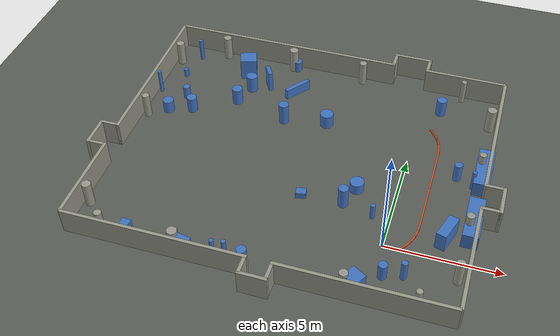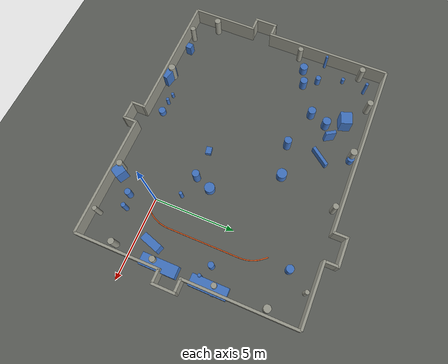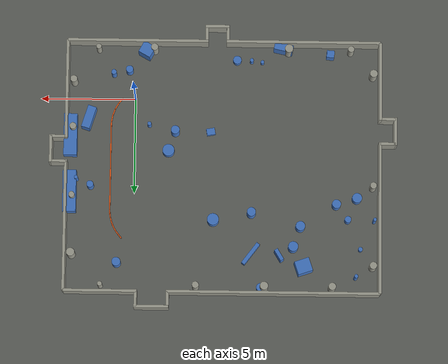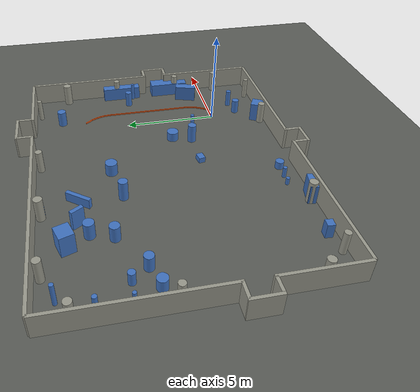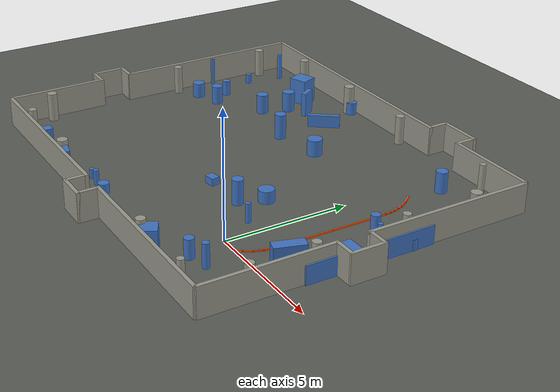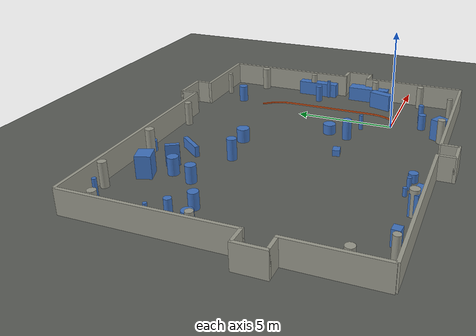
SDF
<sdf version="1.9">
 <world name="default">
  <model name="track_curb">
   <static>true</static>
   <link name="curb_link">
    <collision name="right0_0_0_collision">
     <pose>0.795838 0.075965 0.035000 0.000000 0.000000 0.878218</pose>
     <geometry><box><size>0.386390 0.060000 0.070000</size></box></geometry>
    </collision>
    <visual name="right0_0_0_visual">
     <pose>0.795838 0.075965 0.035000 0.000000 0.000000 0.878218</pose>
     <geometry><box><size>0.386390 0.060000 0.070000</size></box></geometry>
     <material><ambient>0.9 0.35 0.1 1</ambient><diffuse>0.9 0.35 0.1 1</diffuse></material>
    </visual>
    <collision name="right0_1_0_collision">
     <pose>0.989773 0.355284 0.035000 0.000000 0.000000 1.042438</pose>
     <geometry><box><size>0.415992 0.060000 0.070000</size></box></geometry>
    </collision>
    <visual name="right0_1_0_visual">
     <pose>0.989773 0.355284 0.035000 0.000000 0.000000 1.042438</pose>
     <geometry><box><size>0.415992 0.060000 0.070000</size></box></geometry>
     <material><ambient>0.9 0.35 0.1 1</ambient><diffuse>0.9 0.35 0.1 1</diffuse></material>
    </visual>
    <collision name="right0_2_0_collision">
     <pose>1.141707 0.675781 0.035000 0.000000 0.000000 1.213797</pose>
     <geometry><box><size>0.415992 0.060000 0.070000</size></box></geometry>
    </collision>
    <visual name="right0_2_0_visual">
     <pose>1.141707 0.675781 0.035000 0.000000 0.000000 1.213797</pose>
     <geometry><box><size>0.415992 0.060000 0.070000</size></box></geometry>
     <material><ambient>0.9 0.35 0.1 1</ambient><diffuse>0.9 0.35 0.1 1</diffuse></material>
    </visual>
    <collision name="right0_3_0_collision">
     <pose>1.236763 1.017492 0.035000 0.000000 0.000000 1.385157</pose>
     <geometry><box><size>0.415992 0.060000 0.070000</size></box></geometry>
    </collision>
    <visual name="right0_3_0_visual">
     <pose>1.236763 1.017492 0.035000 0.000000 0.000000 1.385157</pose>
     <geometry><box><size>0.415992 0.060000 0.070000</size></box></geometry>
     <material><ambient>0.9 0.35 0.1 1</ambient><diffuse>0.9 0.35 0.1 1</diffuse></material>
    </visual>
    <collision name="right0_4_0_collision">
     <pose>1.274806 1.294999 0.035000 0.000000 0.000000 1.520246</pose>
     <geometry><box><size>0.265400 0.060000 0.070000</size></box></geometry>
    </collision>
    <visual name="right0_4_0_visual">
     <pose>1.274806 1.294999 0.035000 0.000000 0.000000 1.520246</pose>
     <geometry><box><size>0.265400 0.060000 0.070000</size></box></geometry>
     <material><ambient>0.9 0.35 0.1 1</ambient><diffuse>0.9 0.35 0.1 1</diffuse></material>
    </visual>
    <collision name="right0_5_0_collision">
     <pose>1.279996 2.523784 0.035000 0.000000 0.000000 1.570796</pose>
     <geometry><box><size>2.312432 0.060000 0.070000</size></box></geometry>
    </collision>
    <visual name="right0_5_0_visual">
     <pose>1.279996 2.523784 0.035000 0.000000 0.000000 1.570796</pose>
     <geometry><box><size>2.312432 0.060000 0.070000</size></box></geometry>
     <material><ambient>0.9 0.35 0.1 1</ambient><diffuse>0.9 0.35 0.1 1</diffuse></material>
    </visual>
    <collision name="right0_5_1_collision">
     <pose>1.279996 4.776216 0.035000 0.000000 0.000000 1.570796</pose>
     <geometry><box><size>2.312432 0.060000 0.070000</size></box></geometry>
    </collision>
    <visual name="right0_5_1_visual">
     <pose>1.279996 4.776216 0.035000 0.000000 0.000000 1.570796</pose>
     <geometry><box><size>2.312432 0.060000 0.070000</size></box></geometry>
     <material><ambient>0.9 0.35 0.1 1</ambient><diffuse>0.9 0.35 0.1 1</diffuse></material>
    </visual>
    <collision name="right0_6_0_collision">
     <pose>1.274806 6.005001 0.035000 0.000000 0.000000 1.621347</pose>
     <geometry><box><size>0.265400 0.060000 0.070000</size></box></geometry>
    </collision>
    <visual name="right0_6_0_visual">
     <pose>1.274806 6.005001 0.035000 0.000000 0.000000 1.621347</pose>
     <geometry><box><size>0.265400 0.060000 0.070000</size></box></geometry>
     <material><ambient>0.9 0.35 0.1 1</ambient><diffuse>0.9 0.35 0.1 1</diffuse></material>
    </visual>
    <collision name="right0_7_0_collision">
     <pose>1.254094 6.210319 0.035000 0.000000 0.000000 1.720736</pose>
     <geometry><box><size>0.267830 0.060000 0.070000</size></box></geometry>
    </collision>
    <visual name="right0_7_0_visual">
     <pose>1.254094 6.210319 0.035000 0.000000 0.000000 1.720736</pose>
     <geometry><box><size>0.267830 0.060000 0.070000</size></box></geometry>
     <material><ambient>0.9 0.35 0.1 1</ambient><diffuse>0.9 0.35 0.1 1</diffuse></material>
    </visual>
    <collision name="right0_8_0_collision">
     <pose>1.212873 6.413755 0.035000 0.000000 0.000000 1.820696</pose>
     <geometry><box><size>0.267830 0.060000 0.070000</size></box></geometry>
    </collision>
    <visual name="right0_8_0_visual">
     <pose>1.212873 6.413755 0.035000 0.000000 0.000000 1.820696</pose>
     <geometry><box><size>0.267830 0.060000 0.070000</size></box></geometry>
     <material><ambient>0.9 0.35 0.1 1</ambient><diffuse>0.9 0.35 0.1 1</diffuse></material>
    </visual>
    <collision name="right0_9_0_collision">
     <pose>1.151556 6.612062 0.035000 0.000000 0.000000 1.920656</pose>
     <geometry><box><size>0.267830 0.060000 0.070000</size></box></geometry>
    </collision>
    <visual name="right0_9_0_visual">
     <pose>1.151556 6.612062 0.035000 0.000000 0.000000 1.920656</pose>
     <geometry><box><size>0.267830 0.060000 0.070000</size></box></geometry>
     <material><ambient>0.9 0.35 0.1 1</ambient><diffuse>0.9 0.35 0.1 1</diffuse></material>
    </visual>
    <collision name="right0_10_0_collision">
     <pose>1.070755 6.803260 0.035000 0.000000 0.000000 2.020615</pose>
     <geometry><box><size>0.267830 0.060000 0.070000</size></box></geometry>
    </collision>
    <visual name="right0_10_0_visual">
     <pose>1.070755 6.803260 0.035000 0.000000 0.000000 2.020615</pose>
     <geometry><box><size>0.267830 0.060000 0.070000</size></box></geometry>
     <material><ambient>0.9 0.35 0.1 1</ambient><diffuse>0.9 0.35 0.1 1</diffuse></material>
    </visual>
    <collision name="right0_11_0_collision">
     <pose>0.979572 6.973121 0.035000 0.000000 0.000000 2.113435</pose>
     <geometry><box><size>0.238159 0.060000 0.070000</size></box></geometry>
    </collision>
    <visual name="right0_11_0_visual">
     <pose>0.979572 6.973121 0.035000 0.000000 0.000000 2.113435</pose>
     <geometry><box><size>0.238159 0.060000 0.070000</size></box></geometry>
     <material><ambient>0.9 0.35 0.1 1</ambient><diffuse>0.9 0.35 0.1 1</diffuse></material>
    </visual>
    <collision name="right0_12_0_collision">
     <pose>0.795085 7.224105 0.035000 0.000000 0.000000 2.241073</pose>
     <geometry><box><size>0.505864 0.060000 0.070000</size></box></geometry>
    </collision>
    <visual name="right0_12_0_visual">
     <pose>0.795085 7.224105 0.035000 0.000000 0.000000 2.241073</pose>
     <geometry><box><size>0.505864 0.060000 0.070000</size></box></geometry>
     <material><ambient>0.9 0.35 0.1 1</ambient><diffuse>0.9 0.35 0.1 1</diffuse></material>
    </visual>
   </link>
  </model>
  <model name="track_feature">
   <static>true</static>
   <link name="feature_link">
    <collision name="feat_box_2_collision">
     <pose>-0.581415 -2.556854 0.527100 0.000000 0.000000 -2.079561</pose>
     <geometry><box><size>0.652562 0.680930 1.054201</size></box></geometry>
    </collision>
    <visual name="feat_box_2_visual">
     <pose>-0.581415 -2.556854 0.527100 0.000000 0.000000 -2.079561</pose>
     <geometry><box><size>0.652562 0.680930 1.054201</size></box></geometry>
     <material><ambient>0.25 0.45 0.75 1</ambient><diffuse>0.25 0.45 0.75 1</diffuse></material>
    </visual>
    <collision name="feat_box_3_collision">
     <pose>-6.160426 8.190236 0.258453 0.000000 0.000000 0.923314</pose>
     <geometry><box><size>1.338769 0.205793 0.516906</size></box></geometry>
    </collision>
    <visual name="feat_box_3_visual">
     <pose>-6.160426 8.190236 0.258453 0.000000 0.000000 0.923314</pose>
     <geometry><box><size>1.338769 0.205793 0.516906</size></box></geometry>
     <material><ambient>0.25 0.45 0.75 1</ambient><diffuse>0.25 0.45 0.75 1</diffuse></material>
    </visual>
    <collision name="feat_box_6_collision">
     <pose>-8.921870 8.882231 0.544162 0.000000 0.000000 0.329599</pose>
     <geometry><box><size>0.791127 0.712381 1.088324</size></box></geometry>
    </collision>
    <visual name="feat_box_6_visual">
     <pose>-8.921870 8.882231 0.544162 0.000000 0.000000 0.329599</pose>
     <geometry><box><size>0.791127 0.712381 1.088324</size></box></geometry>
     <material><ambient>0.25 0.45 0.75 1</ambient><diffuse>0.25 0.45 0.75 1</diffuse></material>
    </visual>
    <collision name="feat_box_9_collision">
     <pose>-7.639466 8.291622 0.512000 0.000000 0.000000 -1.023772</pose>
     <geometry><box><size>0.650131 0.202313 1.024000</size></box></geometry>
    </collision>
    <visual name="feat_box_9_visual">
     <pose>-7.639466 8.291622 0.512000 0.000000 0.000000 -1.023772</pose>
     <geometry><box><size>0.650131 0.202313 1.024000</size></box></geometry>
     <material><ambient>0.25 0.45 0.75 1</ambient><diffuse>0.25 0.45 0.75 1</diffuse></material>
    </visual>
    <collision name="feat_box_17_collision">
     <pose>2.437986 1.081042 0.435741 0.000000 0.000000 -1.877875</pose>
     <geometry><box><size>1.191977 0.456318 0.871483</size></box></geometry>
    </collision>
    <visual name="feat_box_17_visual">
     <pose>2.437986 1.081042 0.435741 0.000000 0.000000 -1.877875</pose>
     <geometry><box><size>1.191977 0.456318 0.871483</size></box></geometry>
     <material><ambient>0.25 0.45 0.75 1</ambient><diffuse>0.25 0.45 0.75 1</diffuse></material>
    </visual>
    <collision name="feat_box_22_collision">
     <pose>-7.800102 -2.750025 0.512488 0.000000 0.000000 -0.214717</pose>
     <geometry><box><size>0.996011 0.394849 1.024977</size></box></geometry>
    </collision>
    <visual name="feat_box_22_visual">
     <pose>-7.800102 -2.750025 0.512488 0.000000 0.000000 -0.214717</pose>
     <geometry><box><size>0.996011 0.394849 1.024977</size></box></geometry>
     <material><ambient>0.25 0.45 0.75 1</ambient><diffuse>0.25 0.45 0.75 1</diffuse></material>
    </visual>
    <collision name="feat_box_30_collision">
     <pose>-10.289091 -2.465221 0.379258 0.000000 0.000000 1.489218</pose>
     <geometry><box><size>0.373003 0.396188 0.758515</size></box></geometry>
    </collision>
    <visual name="feat_box_30_visual">
     <pose>-10.289091 -2.465221 0.379258 0.000000 0.000000 1.489218</pose>
     <geometry><box><size>0.373003 0.396188 0.758515</size></box></geometry>
     <material><ambient>0.25 0.45 0.75 1</ambient><diffuse>0.25 0.45 0.75 1</diffuse></material>
    </visual>
    <collision name="landmark_0_collision">
     <pose>-4.000000 1.700000 0.150000 0.000000 0.000000 0.174533</pose>
     <geometry><box><size>0.450000 0.350000 0.300000</size></box></geometry>
    </collision>
    <visual name="landmark_0_visual">
     <pose>-4.000000 1.700000 0.150000 0.000000 0.000000 0.174533</pose>
     <geometry><box><size>0.450000 0.350000 0.300000</size></box></geometry>
     <material><ambient>0.25 0.45 0.75 1</ambient><diffuse>0.25 0.45 0.75 1</diffuse></material>
    </visual>
    <collision name="landmark_1_collision">
     <pose>3.400000 2.000000 0.375000 0.000000 0.000000 0.000000</pose>
     <geometry><box><size>0.700000 2.200000 0.750000</size></box></geometry>
    </collision>
    <visual name="landmark_1_visual">
     <pose>3.400000 2.000000 0.375000 0.000000 0.000000 0.000000</pose>
     <geometry><box><size>0.700000 2.200000 0.750000</size></box></geometry>
     <material><ambient>0.25 0.45 0.75 1</ambient><diffuse>0.25 0.45 0.75 1</diffuse></material>
    </visual>
    <collision name="landmark_2_collision">
     <pose>3.400000 5.000000 0.375000 0.000000 0.000000 0.000000</pose>
     <geometry><box><size>0.700000 2.200000 0.750000</size></box></geometry>
    </collision>
    <visual name="landmark_2_visual">
     <pose>3.400000 5.000000 0.375000 0.000000 0.000000 0.000000</pose>
     <geometry><box><size>0.700000 2.200000 0.750000</size></box></geometry>
     <material><ambient>0.25 0.45 0.75 1</ambient><diffuse>0.25 0.45 0.75 1</diffuse></material>
    </visual>
    <collision name="feat_cyl_1_collision">
     <pose>-1.774489 2.749740 0.251477 0.000000 0.000000 0.000000</pose>
     <geometry><cylinder><radius>0.314614</radius><length>0.502954</length></cylinder></geometry>
    </collision>
    <visual name="feat_cyl_1_visual">
     <pose>-1.774489 2.749740 0.251477 0.000000 0.000000 0.000000</pose>
     <geometry><cylinder><radius>0.314614</radius><length>0.502954</length></cylinder></geometry>
     <material><ambient>0.25 0.45 0.75 1</ambient><diffuse>0.25 0.45 0.75 1</diffuse></material>
    </visual>
    <collision name="feat_cyl_4_collision">
     <pose>-6.694799 -2.059456 0.194213 0.000000 0.000000 0.000000</pose>
     <geometry><cylinder><radius>0.096125</radius><length>0.388426</length></cylinder></geometry>
    </collision>
    <visual name="feat_cyl_4_visual">
     <pose>-6.694799 -2.059456 0.194213 0.000000 0.000000 0.000000</pose>
     <geometry><cylinder><radius>0.096125</radius><length>0.388426</length></cylinder></geometry>
     <material><ambient>0.25 0.45 0.75 1</ambient><diffuse>0.25 0.45 0.75 1</diffuse></material>
    </visual>
    <collision name="feat_cyl_5_collision">
     <pose>-11.248425 6.349912 0.329447 0.000000 0.000000 0.000000</pose>
     <geometry><cylinder><radius>0.171465</radius><length>0.658894</length></cylinder></geometry>
    </collision>
    <visual name="feat_cyl_5_visual">
     <pose>-11.248425 6.349912 0.329447 0.000000 0.000000 0.000000</pose>
     <geometry><cylinder><radius>0.171465</radius><length>0.658894</length></cylinder></geometry>
     <material><ambient>0.25 0.45 0.75 1</ambient><diffuse>0.25 0.45 0.75 1</diffuse></material>
    </visual>
    <collision name="feat_cyl_7_collision">
     <pose>-2.129406 1.742207 0.508666 0.000000 0.000000 0.000000</pose>
     <geometry><cylinder><radius>0.223696</radius><length>1.017332</length></cylinder></geometry>
    </collision>
    <visual name="feat_cyl_7_visual">
     <pose>-2.129406 1.742207 0.508666 0.000000 0.000000 0.000000</pose>
     <geometry><cylinder><radius>0.223696</radius><length>1.017332</length></cylinder></geometry>
     <material><ambient>0.25 0.45 0.75 1</ambient><diffuse>0.25 0.45 0.75 1</diffuse></material>
    </visual>
    <collision name="feat_cyl_8_collision">
     <pose>-11.724675 5.199260 0.315476 0.000000 0.000000 0.000000</pose>
     <geometry><cylinder><radius>0.257579</radius><length>0.630951</length></cylinder></geometry>
    </collision>
    <visual name="feat_cyl_8_visual">
     <pose>-11.724675 5.199260 0.315476 0.000000 0.000000 0.000000</pose>
     <geometry><cylinder><radius>0.257579</radius><length>0.630951</length></cylinder></geometry>
     <material><ambient>0.25 0.45 0.75 1</ambient><diffuse>0.25 0.45 0.75 1</diffuse></material>
    </visual>
    <collision name="feat_cyl_10_collision">
     <pose>-8.383253 7.828350 0.425368 0.000000 0.000000 0.000000</pose>
     <geometry><cylinder><radius>0.262843</radius><length>0.850736</length></cylinder></geometry>
    </collision>
    <visual name="feat_cyl_10_visual">
     <pose>-8.383253 7.828350 0.425368 0.000000 0.000000 0.000000</pose>
     <geometry><cylinder><radius>0.262843</radius><length>0.850736</length></cylinder></geometry>
     <material><ambient>0.25 0.45 0.75 1</ambient><diffuse>0.25 0.45 0.75 1</diffuse></material>
    </visual>
    <collision name="feat_cyl_11_collision">
     <pose>-6.684945 9.968727 0.267723 0.000000 0.000000 0.000000</pose>
     <geometry><cylinder><radius>0.219137</radius><length>0.535447</length></cylinder></geometry>
    </collision>
    <visual name="feat_cyl_11_visual">
     <pose>-6.684945 9.968727 0.267723 0.000000 0.000000 0.000000</pose>
     <geometry><cylinder><radius>0.219137</radius><length>0.535447</length></cylinder></geometry>
     <material><ambient>0.25 0.45 0.75 1</ambient><diffuse>0.25 0.45 0.75 1</diffuse></material>
    </visual>
    <collision name="feat_cyl_12_collision">
     <pose>-11.666292 9.393082 0.574413 0.000000 0.000000 0.000000</pose>
     <geometry><cylinder><radius>0.099789</radius><length>1.148826</length></cylinder></geometry>
    </collision>
    <visual name="feat_cyl_12_visual">
     <pose>-11.666292 9.393082 0.574413 0.000000 0.000000 0.000000</pose>
     <geometry><cylinder><radius>0.099789</radius><length>1.148826</length></cylinder></geometry>
     <material><ambient>0.25 0.45 0.75 1</ambient><diffuse>0.25 0.45 0.75 1</diffuse></material>
    </visual>
    <collision name="feat_cyl_13_collision">
     <pose>3.052305 4.317826 0.491781 0.000000 0.000000 0.000000</pose>
     <geometry><cylinder><radius>0.095647</radius><length>0.983562</length></cylinder></geometry>
    </collision>
    <visual name="feat_cyl_13_visual">
     <pose>3.052305 4.317826 0.491781 0.000000 0.000000 0.000000</pose>
     <geometry><cylinder><radius>0.095647</radius><length>0.983562</length></cylinder></geometry>
     <material><ambient>0.25 0.45 0.75 1</ambient><diffuse>0.25 0.45 0.75 1</diffuse></material>
    </visual>
    <collision name="feat_cyl_14_collision">
     <pose>0.869227 8.741721 0.430245 0.000000 0.000000 0.000000</pose>
     <geometry><cylinder><radius>0.230710</radius><length>0.860490</length></cylinder></geometry>
    </collision>
    <visual name="feat_cyl_14_visual">
     <pose>0.869227 8.741721 0.430245 0.000000 0.000000 0.000000</pose>
     <geometry><cylinder><radius>0.230710</radius><length>0.860490</length></cylinder></geometry>
     <material><ambient>0.25 0.45 0.75 1</ambient><diffuse>0.25 0.45 0.75 1</diffuse></material>
    </visual>
    <collision name="feat_cyl_15_collision">
     <pose>-5.357916 -2.153753 0.207390 0.000000 0.000000 0.000000</pose>
     <geometry><cylinder><radius>0.218447</radius><length>0.414781</length></cylinder></geometry>
    </collision>
    <visual name="feat_cyl_15_visual">
     <pose>-5.357916 -2.153753 0.207390 0.000000 0.000000 0.000000</pose>
     <geometry><cylinder><radius>0.218447</radius><length>0.414781</length></cylinder></geometry>
     <material><ambient>0.25 0.45 0.75 1</ambient><diffuse>0.25 0.45 0.75 1</diffuse></material>
    </visual>
    <collision name="feat_cyl_16_collision">
     <pose>-4.165591 6.422975 0.336970 0.000000 0.000000 0.000000</pose>
     <geometry><cylinder><radius>0.309782</radius><length>0.673940</length></cylinder></geometry>
    </collision>
    <visual name="feat_cyl_16_visual">
     <pose>-4.165591 6.422975 0.336970 0.000000 0.000000 0.000000</pose>
     <geometry><cylinder><radius>0.309782</radius><length>0.673940</length></cylinder></geometry>
     <material><ambient>0.25 0.45 0.75 1</ambient><diffuse>0.25 0.45 0.75 1</diffuse></material>
    </visual>
    <collision name="feat_cyl_18_collision">
     <pose>1.152145 -1.325701 0.479255 0.000000 0.000000 0.000000</pose>
     <geometry><cylinder><radius>0.135182</radius><length>0.958511</length></cylinder></geometry>
    </collision>
    <visual name="feat_cyl_18_visual">
     <pose>1.152145 -1.325701 0.479255 0.000000 0.000000 0.000000</pose>
     <geometry><cylinder><radius>0.135182</radius><length>0.958511</length></cylinder></geometry>
     <material><ambient>0.25 0.45 0.75 1</ambient><diffuse>0.25 0.45 0.75 1</diffuse></material>
    </visual>
    <collision name="feat_cyl_19_collision">
     <pose>3.578357 5.291748 0.212490 0.000000 0.000000 0.000000</pose>
     <geometry><cylinder><radius>0.204324</radius><length>0.424980</length></cylinder></geometry>
    </collision>
    <visual name="feat_cyl_19_visual">
     <pose>3.578357 5.291748 0.212490 0.000000 0.000000 0.000000</pose>
     <geometry><cylinder><radius>0.204324</radius><length>0.424980</length></cylinder></geometry>
     <material><ambient>0.25 0.45 0.75 1</ambient><diffuse>0.25 0.45 0.75 1</diffuse></material>
    </visual>
    <collision name="feat_cyl_20_collision">
     <pose>0.331226 -1.519883 0.392856 0.000000 0.000000 0.000000</pose>
     <geometry><cylinder><radius>0.191734</radius><length>0.785712</length></cylinder></geometry>
    </collision>
    <visual name="feat_cyl_20_visual">
     <pose>0.331226 -1.519883 0.392856 0.000000 0.000000 0.000000</pose>
     <geometry><cylinder><radius>0.191734</radius><length>0.785712</length></cylinder></geometry>
     <material><ambient>0.25 0.45 0.75 1</ambient><diffuse>0.25 0.45 0.75 1</diffuse></material>
    </visual>
    <collision name="feat_cyl_21_collision">
     <pose>-0.755450 1.382525 0.382097 0.000000 0.000000 0.000000</pose>
     <geometry><cylinder><radius>0.103910</radius><length>0.764194</length></cylinder></geometry>
    </collision>
    <visual name="feat_cyl_21_visual">
     <pose>-0.755450 1.382525 0.382097 0.000000 0.000000 0.000000</pose>
     <geometry><cylinder><radius>0.103910</radius><length>0.764194</length></cylinder></geometry>
     <material><ambient>0.25 0.45 0.75 1</ambient><diffuse>0.25 0.45 0.75 1</diffuse></material>
    </visual>
    <collision name="feat_cyl_23_collision">
     <pose>-8.753124 6.739991 0.413110 0.000000 0.000000 0.000000</pose>
     <geometry><cylinder><radius>0.248951</radius><length>0.826221</length></cylinder></geometry>
    </collision>
    <visual name="feat_cyl_23_visual">
     <pose>-8.753124 6.739991 0.413110 0.000000 0.000000 0.000000</pose>
     <geometry><cylinder><radius>0.248951</radius><length>0.826221</length></cylinder></geometry>
     <material><ambient>0.25 0.45 0.75 1</ambient><diffuse>0.25 0.45 0.75 1</diffuse></material>
    </visual>
    <collision name="feat_cyl_24_collision">
     <pose>-6.127524 -2.114447 0.298246 0.000000 0.000000 0.000000</pose>
     <geometry><cylinder><radius>0.102054</radius><length>0.596491</length></cylinder></geometry>
    </collision>
    <visual name="feat_cyl_24_visual">
     <pose>-6.127524 -2.114447 0.298246 0.000000 0.000000 0.000000</pose>
     <geometry><cylinder><radius>0.102054</radius><length>0.596491</length></cylinder></geometry>
     <material><ambient>0.25 0.45 0.75 1</ambient><diffuse>0.25 0.45 0.75 1</diffuse></material>
    </visual>
    <collision name="feat_cyl_25_collision">
     <pose>-6.173185 6.054653 0.525848 0.000000 0.000000 0.000000</pose>
     <geometry><cylinder><radius>0.232763</radius><length>1.051696</length></cylinder></geometry>
    </collision>
    <visual name="feat_cyl_25_visual">
     <pose>-6.173185 6.054653 0.525848 0.000000 0.000000 0.000000</pose>
     <geometry><cylinder><radius>0.232763</radius><length>1.051696</length></cylinder></geometry>
     <material><ambient>0.25 0.45 0.75 1</ambient><diffuse>0.25 0.45 0.75 1</diffuse></material>
    </visual>
    <collision name="feat_cyl_26_collision">
     <pose>-12.632936 6.407135 0.598371 0.000000 0.000000 0.000000</pose>
     <geometry><cylinder><radius>0.087629</radius><length>1.196742</length></cylinder></geometry>
    </collision>
    <visual name="feat_cyl_26_visual">
     <pose>-12.632936 6.407135 0.598371 0.000000 0.000000 0.000000</pose>
     <geometry><cylinder><radius>0.087629</radius><length>1.196742</length></cylinder></geometry>
     <material><ambient>0.25 0.45 0.75 1</ambient><diffuse>0.25 0.45 0.75 1</diffuse></material>
    </visual>
    <collision name="feat_cyl_27_collision">
     <pose>2.310290 4.667056 0.440040 0.000000 0.000000 0.000000</pose>
     <geometry><cylinder><radius>0.178377</radius><length>0.880081</length></cylinder></geometry>
    </collision>
    <visual name="feat_cyl_27_visual">
     <pose>2.310290 4.667056 0.440040 0.000000 0.000000 0.000000</pose>
     <geometry><cylinder><radius>0.178377</radius><length>0.880081</length></cylinder></geometry>
     <material><ambient>0.25 0.45 0.75 1</ambient><diffuse>0.25 0.45 0.75 1</diffuse></material>
    </visual>
    <collision name="feat_cyl_28_collision">
     <pose>-11.924055 7.880588 0.205456 0.000000 0.000000 0.000000</pose>
     <geometry><cylinder><radius>0.117067</radius><length>0.410912</length></cylinder></geometry>
    </collision>
    <visual name="feat_cyl_28_visual">
     <pose>-11.924055 7.880588 0.205456 0.000000 0.000000 0.000000</pose>
     <geometry><cylinder><radius>0.117067</radius><length>0.410912</length></cylinder></geometry>
     <material><ambient>0.25 0.45 0.75 1</ambient><diffuse>0.25 0.45 0.75 1</diffuse></material>
    </visual>
    <collision name="feat_cyl_29_collision">
     <pose>-10.640033 5.551522 0.393729 0.000000 0.000000 0.000000</pose>
     <geometry><cylinder><radius>0.234279</radius><length>0.787458</length></cylinder></geometry>
    </collision>
    <visual name="feat_cyl_29_visual">
     <pose>-10.640033 5.551522 0.393729 0.000000 0.000000 0.000000</pose>
     <geometry><cylinder><radius>0.234279</radius><length>0.787458</length></cylinder></geometry>
     <material><ambient>0.25 0.45 0.75 1</ambient><diffuse>0.25 0.45 0.75 1</diffuse></material>
    </visual>
   </link>
  </model>
  <model name="track_ground">
   <static>true</static>
   <link name="ground_link">
    <collision name="ground_collision">
     <pose>-3.866297 2.778926 -0.025000 0.000000 0.000000 0.000000</pose>
     <geometry><box><size>80.000000 80.000000 0.050000</size></box></geometry>
     <surface>
      <friction><ode><mu>1.2</mu><mu2>1.2</mu2></ode></friction>
      <contact><ode><kp>100000.0</kp><kd>10.0</kd></ode></contact>
     </surface>
    </collision>
    <visual name="ground_visual">
     <pose>-3.866297 2.778926 -0.025000 0.000000 0.000000 0.000000</pose>
     <geometry><box><size>80.000000 80.000000 0.050000</size></box></geometry>
     <material><ambient>0.35 0.36 0.34 1</ambient><diffuse>0.35 0.36 0.34 1</diffuse></material>
    </visual>
   </link>
  </model>
  <model name="track_room">
   <static>true</static>
   <link name="room_link">
    <collision name="hall_0_0_collision">
     <pose>-8.838522 -3.000000 0.600000 0.000000 0.000000 0.000000</pose>
     <geometry><box><size>8.122956 0.150000 1.200000</size></box></geometry>
    </collision>
    <visual name="hall_0_0_visual">
     <pose>-8.838522 -3.000000 0.600000 0.000000 0.000000 0.000000</pose>
     <geometry><box><size>8.122956 0.150000 1.200000</size></box></geometry>
     <material><ambient>0.6 0.6 0.55 1</ambient><diffuse>0.6 0.6 0.55 1</diffuse></material>
    </visual>
    <collision name="hall_0_90_collision">
     <pose>-0.104746 -3.000000 0.600000 0.000000 0.000000 0.000000</pose>
     <geometry><box><size>7.409492 0.150000 1.200000</size></box></geometry>
    </collision>
    <visual name="hall_0_90_visual">
     <pose>-0.104746 -3.000000 0.600000 0.000000 0.000000 0.000000</pose>
     <geometry><box><size>7.409492 0.150000 1.200000</size></box></geometry>
     <material><ambient>0.6 0.6 0.55 1</ambient><diffuse>0.6 0.6 0.55 1</diffuse></material>
    </visual>
    <collision name="hall_niche_0_collision">
     <pose>-4.293268 -3.800000 0.600000 0.000000 0.000000 0.000000</pose>
     <geometry><box><size>1.267552 0.150000 1.200000</size></box></geometry>
    </collision>
    <visual name="hall_niche_0_visual">
     <pose>-4.293268 -3.800000 0.600000 0.000000 0.000000 0.000000</pose>
     <geometry><box><size>1.267552 0.150000 1.200000</size></box></geometry>
     <material><ambient>0.6 0.6 0.55 1</ambient><diffuse>0.6 0.6 0.55 1</diffuse></material>
    </visual>
    <collision name="hall_jamb_0_-1_collision">
     <pose>-4.852044 -3.400000 0.600000 0.000000 0.000000 0.000000</pose>
     <geometry><box><size>0.150000 0.800000 1.200000</size></box></geometry>
    </collision>
    <visual name="hall_jamb_0_-1_visual">
     <pose>-4.852044 -3.400000 0.600000 0.000000 0.000000 0.000000</pose>
     <geometry><box><size>0.150000 0.800000 1.200000</size></box></geometry>
     <material><ambient>0.6 0.6 0.55 1</ambient><diffuse>0.6 0.6 0.55 1</diffuse></material>
    </visual>
    <collision name="hall_jamb_0_1_collision">
     <pose>-3.734492 -3.400000 0.600000 0.000000 0.000000 0.000000</pose>
     <geometry><box><size>0.150000 0.800000 1.200000</size></box></geometry>
    </collision>
    <visual name="hall_jamb_0_1_visual">
     <pose>-3.734492 -3.400000 0.600000 0.000000 0.000000 0.000000</pose>
     <geometry><box><size>0.150000 0.800000 1.200000</size></box></geometry>
     <material><ambient>0.6 0.6 0.55 1</ambient><diffuse>0.6 0.6 0.55 1</diffuse></material>
    </visual>
    <collision name="hall_1_0_collision">
     <pose>3.600000 -0.368566 0.600000 0.000000 0.000000 1.570796</pose>
     <geometry><box><size>5.262867 0.150000 1.200000</size></box></geometry>
    </collision>
    <visual name="hall_1_0_visual">
     <pose>3.600000 -0.368566 0.600000 0.000000 0.000000 1.570796</pose>
     <geometry><box><size>5.262867 0.150000 1.200000</size></box></geometry>
     <material><ambient>0.6 0.6 0.55 1</ambient><diffuse>0.6 0.6 0.55 1</diffuse></material>
    </visual>
    <collision name="hall_1_64_collision">
     <pose>3.600000 6.861199 0.600000 0.000000 0.000000 1.570796</pose>
     <geometry><box><size>6.877601 0.150000 1.200000</size></box></geometry>
    </collision>
    <visual name="hall_1_64_visual">
     <pose>3.600000 6.861199 0.600000 0.000000 0.000000 1.570796</pose>
     <geometry><box><size>6.877601 0.150000 1.200000</size></box></geometry>
     <material><ambient>0.6 0.6 0.55 1</ambient><diffuse>0.6 0.6 0.55 1</diffuse></material>
    </visual>
    <collision name="hall_niche_1_collision">
     <pose>4.400000 2.842633 0.600000 0.000000 0.000000 1.570796</pose>
     <geometry><box><size>1.459531 0.150000 1.200000</size></box></geometry>
    </collision>
    <visual name="hall_niche_1_visual">
     <pose>4.400000 2.842633 0.600000 0.000000 0.000000 1.570796</pose>
     <geometry><box><size>1.459531 0.150000 1.200000</size></box></geometry>
     <material><ambient>0.6 0.6 0.55 1</ambient><diffuse>0.6 0.6 0.55 1</diffuse></material>
    </visual>
    <collision name="hall_jamb_1_-1_collision">
     <pose>4.000000 2.187867 0.600000 0.000000 0.000000 1.570796</pose>
     <geometry><box><size>0.150000 0.800000 1.200000</size></box></geometry>
    </collision>
    <visual name="hall_jamb_1_-1_visual">
     <pose>4.000000 2.187867 0.600000 0.000000 0.000000 1.570796</pose>
     <geometry><box><size>0.150000 0.800000 1.200000</size></box></geometry>
     <material><ambient>0.6 0.6 0.55 1</ambient><diffuse>0.6 0.6 0.55 1</diffuse></material>
    </visual>
    <collision name="hall_jamb_1_1_collision">
     <pose>4.000000 3.497399 0.600000 0.000000 0.000000 1.570796</pose>
     <geometry><box><size>0.150000 0.800000 1.200000</size></box></geometry>
    </collision>
    <visual name="hall_jamb_1_1_visual">
     <pose>4.000000 3.497399 0.600000 0.000000 0.000000 1.570796</pose>
     <geometry><box><size>0.150000 0.800000 1.200000</size></box></geometry>
     <material><ambient>0.6 0.6 0.55 1</ambient><diffuse>0.6 0.6 0.55 1</diffuse></material>
    </visual>
    <collision name="hall_2_0_collision">
     <pose>1.679348 10.300000 0.600000 0.000000 0.000000 3.141593</pose>
     <geometry><box><size>3.841303 0.150000 1.200000</size></box></geometry>
    </collision>
    <visual name="hall_2_0_visual">
     <pose>1.679348 10.300000 0.600000 0.000000 0.000000 3.141593</pose>
     <geometry><box><size>3.841303 0.150000 1.200000</size></box></geometry>
     <material><ambient>0.6 0.6 0.55 1</ambient><diffuse>0.6 0.6 0.55 1</diffuse></material>
    </visual>
    <collision name="hall_2_53_collision">
     <pose>-7.329607 10.300000 0.600000 0.000000 0.000000 3.141593</pose>
     <geometry><box><size>11.140787 0.150000 1.200000</size></box></geometry>
    </collision>
    <visual name="hall_2_53_visual">
     <pose>-7.329607 10.300000 0.600000 0.000000 0.000000 3.141593</pose>
     <geometry><box><size>11.140787 0.150000 1.200000</size></box></geometry>
     <material><ambient>0.6 0.6 0.55 1</ambient><diffuse>0.6 0.6 0.55 1</diffuse></material>
    </visual>
    <collision name="hall_niche_2_collision">
     <pose>-1.000258 11.100000 0.600000 0.000000 0.000000 3.141593</pose>
     <geometry><box><size>1.817910 0.150000 1.200000</size></box></geometry>
    </collision>
    <visual name="hall_niche_2_visual">
     <pose>-1.000258 11.100000 0.600000 0.000000 0.000000 3.141593</pose>
     <geometry><box><size>1.817910 0.150000 1.200000</size></box></geometry>
     <material><ambient>0.6 0.6 0.55 1</ambient><diffuse>0.6 0.6 0.55 1</diffuse></material>
    </visual>
    <collision name="hall_jamb_2_-1_collision">
     <pose>-0.166303 10.700000 0.600000 0.000000 0.000000 3.141593</pose>
     <geometry><box><size>0.150000 0.800000 1.200000</size></box></geometry>
    </collision>
    <visual name="hall_jamb_2_-1_visual">
     <pose>-0.166303 10.700000 0.600000 0.000000 0.000000 3.141593</pose>
     <geometry><box><size>0.150000 0.800000 1.200000</size></box></geometry>
     <material><ambient>0.6 0.6 0.55 1</ambient><diffuse>0.6 0.6 0.55 1</diffuse></material>
    </visual>
    <collision name="hall_jamb_2_1_collision">
     <pose>-1.834213 10.700000 0.600000 0.000000 0.000000 3.141593</pose>
     <geometry><box><size>0.150000 0.800000 1.200000</size></box></geometry>
    </collision>
    <visual name="hall_jamb_2_1_visual">
     <pose>-1.834213 10.700000 0.600000 0.000000 0.000000 3.141593</pose>
     <geometry><box><size>0.150000 0.800000 1.200000</size></box></geometry>
     <material><ambient>0.6 0.6 0.55 1</ambient><diffuse>0.6 0.6 0.55 1</diffuse></material>
    </visual>
    <collision name="hall_3_0_collision">
     <pose>-12.900000 6.307811 0.600000 0.000000 0.000000 -1.570796</pose>
     <geometry><box><size>7.984378 0.150000 1.200000</size></box></geometry>
    </collision>
    <visual name="hall_3_0_visual">
     <pose>-12.900000 6.307811 0.600000 0.000000 0.000000 -1.570796</pose>
     <geometry><box><size>7.984378 0.150000 1.200000</size></box></geometry>
     <material><ambient>0.6 0.6 0.55 1</ambient><diffuse>0.6 0.6 0.55 1</diffuse></material>
    </visual>
    <collision name="hall_3_91_collision">
     <pose>-12.900000 -0.927635 0.600000 0.000000 0.000000 -1.570796</pose>
     <geometry><box><size>4.144729 0.150000 1.200000</size></box></geometry>
    </collision>
    <visual name="hall_3_91_visual">
     <pose>-12.900000 -0.927635 0.600000 0.000000 0.000000 -1.570796</pose>
     <geometry><box><size>4.144729 0.150000 1.200000</size></box></geometry>
     <material><ambient>0.6 0.6 0.55 1</ambient><diffuse>0.6 0.6 0.55 1</diffuse></material>
    </visual>
    <collision name="hall_niche_3_collision">
     <pose>-13.700000 1.730175 0.600000 0.000000 0.000000 -1.570796</pose>
     <geometry><box><size>1.470892 0.150000 1.200000</size></box></geometry>
    </collision>
    <visual name="hall_niche_3_visual">
     <pose>-13.700000 1.730175 0.600000 0.000000 0.000000 -1.570796</pose>
     <geometry><box><size>1.470892 0.150000 1.200000</size></box></geometry>
     <material><ambient>0.6 0.6 0.55 1</ambient><diffuse>0.6 0.6 0.55 1</diffuse></material>
    </visual>
    <collision name="hall_jamb_3_-1_collision">
     <pose>-13.300000 2.390622 0.600000 0.000000 0.000000 -1.570796</pose>
     <geometry><box><size>0.150000 0.800000 1.200000</size></box></geometry>
    </collision>
    <visual name="hall_jamb_3_-1_visual">
     <pose>-13.300000 2.390622 0.600000 0.000000 0.000000 -1.570796</pose>
     <geometry><box><size>0.150000 0.800000 1.200000</size></box></geometry>
     <material><ambient>0.6 0.6 0.55 1</ambient><diffuse>0.6 0.6 0.55 1</diffuse></material>
    </visual>
    <collision name="hall_jamb_3_1_collision">
     <pose>-13.300000 1.069729 0.600000 0.000000 0.000000 -1.570796</pose>
     <geometry><box><size>0.150000 0.800000 1.200000</size></box></geometry>
    </collision>
    <visual name="hall_jamb_3_1_visual">
     <pose>-13.300000 1.069729 0.600000 0.000000 0.000000 -1.570796</pose>
     <geometry><box><size>0.150000 0.800000 1.200000</size></box></geometry>
     <material><ambient>0.6 0.6 0.55 1</ambient><diffuse>0.6 0.6 0.55 1</diffuse></material>
    </visual>
    <collision name="column_0_15_collision">
     <pose>-11.355991 -2.650000 0.600000 0.000000 0.000000 0.000000</pose>
     <geometry><cylinder><radius>0.164377</radius><length>1.200000</length></cylinder></geometry>
    </collision>
    <visual name="column_0_15_visual">
     <pose>-11.355991 -2.650000 0.600000 0.000000 0.000000 0.000000</pose>
     <geometry><cylinder><radius>0.164377</radius><length>1.200000</length></cylinder></geometry>
     <material><ambient>0.6 0.6 0.55 1</ambient><diffuse>0.6 0.6 0.55 1</diffuse></material>
    </visual>
    <collision name="column_0_48_collision">
     <pose>-8.079122 -2.650000 0.600000 0.000000 0.000000 0.000000</pose>
     <geometry><cylinder><radius>0.217591</radius><length>1.200000</length></cylinder></geometry>
    </collision>
    <visual name="column_0_48_visual">
     <pose>-8.079122 -2.650000 0.600000 0.000000 0.000000 0.000000</pose>
     <geometry><cylinder><radius>0.217591</radius><length>1.200000</length></cylinder></geometry>
     <material><ambient>0.6 0.6 0.55 1</ambient><diffuse>0.6 0.6 0.55 1</diffuse></material>
    </visual>
    <collision name="column_0_119_collision">
     <pose>-0.982741 -2.650000 0.600000 0.000000 0.000000 0.000000</pose>
     <geometry><cylinder><radius>0.185457</radius><length>1.200000</length></cylinder></geometry>
    </collision>
    <visual name="column_0_119_visual">
     <pose>-0.982741 -2.650000 0.600000 0.000000 0.000000 0.000000</pose>
     <geometry><cylinder><radius>0.185457</radius><length>1.200000</length></cylinder></geometry>
     <material><ambient>0.6 0.6 0.55 1</ambient><diffuse>0.6 0.6 0.55 1</diffuse></material>
    </visual>
    <collision name="column_0_148_collision">
     <pose>1.965624 -2.650000 0.600000 0.000000 0.000000 0.000000</pose>
     <geometry><cylinder><radius>0.136687</radius><length>1.200000</length></cylinder></geometry>
    </collision>
    <visual name="column_0_148_visual">
     <pose>1.965624 -2.650000 0.600000 0.000000 0.000000 0.000000</pose>
     <geometry><cylinder><radius>0.136687</radius><length>1.200000</length></cylinder></geometry>
     <material><ambient>0.6 0.6 0.55 1</ambient><diffuse>0.6 0.6 0.55 1</diffuse></material>
    </visual>
    <collision name="column_1_21_collision">
     <pose>3.250000 -0.889792 0.600000 0.000000 0.000000 0.000000</pose>
     <geometry><cylinder><radius>0.182546</radius><length>1.200000</length></cylinder></geometry>
    </collision>
    <visual name="column_1_21_visual">
     <pose>3.250000 -0.889792 0.600000 0.000000 0.000000 0.000000</pose>
     <geometry><cylinder><radius>0.182546</radius><length>1.200000</length></cylinder></geometry>
     <material><ambient>0.6 0.6 0.55 1</ambient><diffuse>0.6 0.6 0.55 1</diffuse></material>
    </visual>
    <collision name="column_1_46_collision">
     <pose>3.250000 1.628248 0.600000 0.000000 0.000000 0.000000</pose>
     <geometry><cylinder><radius>0.174364</radius><length>1.200000</length></cylinder></geometry>
    </collision>
    <visual name="column_1_46_visual">
     <pose>3.250000 1.628248 0.600000 0.000000 0.000000 0.000000</pose>
     <geometry><cylinder><radius>0.174364</radius><length>1.200000</length></cylinder></geometry>
     <material><ambient>0.6 0.6 0.55 1</ambient><diffuse>0.6 0.6 0.55 1</diffuse></material>
    </visual>
    <collision name="column_1_82_collision">
     <pose>3.250000 5.271839 0.600000 0.000000 0.000000 0.000000</pose>
     <geometry><cylinder><radius>0.157553</radius><length>1.200000</length></cylinder></geometry>
    </collision>
    <visual name="column_1_82_visual">
     <pose>3.250000 5.271839 0.600000 0.000000 0.000000 0.000000</pose>
     <geometry><cylinder><radius>0.157553</radius><length>1.200000</length></cylinder></geometry>
     <material><ambient>0.6 0.6 0.55 1</ambient><diffuse>0.6 0.6 0.55 1</diffuse></material>
    </visual>
    <collision name="column_1_113_collision">
     <pose>3.250000 8.305455 0.600000 0.000000 0.000000 0.000000</pose>
     <geometry><cylinder><radius>0.217460</radius><length>1.200000</length></cylinder></geometry>
    </collision>
    <visual name="column_1_113_visual">
     <pose>3.250000 8.305455 0.600000 0.000000 0.000000 0.000000</pose>
     <geometry><cylinder><radius>0.217460</radius><length>1.200000</length></cylinder></geometry>
     <material><ambient>0.6 0.6 0.55 1</ambient><diffuse>0.6 0.6 0.55 1</diffuse></material>
    </visual>
    <collision name="column_2_19_collision">
     <pose>1.698533 9.950000 0.600000 0.000000 0.000000 0.000000</pose>
     <geometry><cylinder><radius>0.123745</radius><length>1.200000</length></cylinder></geometry>
    </collision>
    <visual name="column_2_19_visual">
     <pose>1.698533 9.950000 0.600000 0.000000 0.000000 0.000000</pose>
     <geometry><cylinder><radius>0.123745</radius><length>1.200000</length></cylinder></geometry>
     <material><ambient>0.6 0.6 0.55 1</ambient><diffuse>0.6 0.6 0.55 1</diffuse></material>
    </visual>
    <collision name="column_2_68_collision">
     <pose>-3.289350 9.950000 0.600000 0.000000 0.000000 0.000000</pose>
     <geometry><cylinder><radius>0.177556</radius><length>1.200000</length></cylinder></geometry>
    </collision>
    <visual name="column_2_68_visual">
     <pose>-3.289350 9.950000 0.600000 0.000000 0.000000 0.000000</pose>
     <geometry><cylinder><radius>0.177556</radius><length>1.200000</length></cylinder></geometry>
     <material><ambient>0.6 0.6 0.55 1</ambient><diffuse>0.6 0.6 0.55 1</diffuse></material>
    </visual>
    <collision name="column_2_104_collision">
     <pose>-6.863857 9.950000 0.600000 0.000000 0.000000 0.000000</pose>
     <geometry><cylinder><radius>0.215404</radius><length>1.200000</length></cylinder></geometry>
    </collision>
    <visual name="column_2_104_visual">
     <pose>-6.863857 9.950000 0.600000 0.000000 0.000000 0.000000</pose>
     <geometry><cylinder><radius>0.215404</radius><length>1.200000</length></cylinder></geometry>
     <material><ambient>0.6 0.6 0.55 1</ambient><diffuse>0.6 0.6 0.55 1</diffuse></material>
    </visual>
    <collision name="column_2_140_collision">
     <pose>-10.417178 9.950000 0.600000 0.000000 0.000000 0.000000</pose>
     <geometry><cylinder><radius>0.194571</radius><length>1.200000</length></cylinder></geometry>
    </collision>
    <visual name="column_2_140_visual">
     <pose>-10.417178 9.950000 0.600000 0.000000 0.000000 0.000000</pose>
     <geometry><cylinder><radius>0.194571</radius><length>1.200000</length></cylinder></geometry>
     <material><ambient>0.6 0.6 0.55 1</ambient><diffuse>0.6 0.6 0.55 1</diffuse></material>
    </visual>
    <collision name="column_3_14_collision">
     <pose>-12.550000 8.824327 0.600000 0.000000 0.000000 0.000000</pose>
     <geometry><cylinder><radius>0.192533</radius><length>1.200000</length></cylinder></geometry>
    </collision>
    <visual name="column_3_14_visual">
     <pose>-12.550000 8.824327 0.600000 0.000000 0.000000 0.000000</pose>
     <geometry><cylinder><radius>0.192533</radius><length>1.200000</length></cylinder></geometry>
     <material><ambient>0.6 0.6 0.55 1</ambient><diffuse>0.6 0.6 0.55 1</diffuse></material>
    </visual>
    <collision name="column_3_56_collision">
     <pose>-12.550000 4.610140 0.600000 0.000000 0.000000 0.000000</pose>
     <geometry><cylinder><radius>0.172372</radius><length>1.200000</length></cylinder></geometry>
    </collision>
    <visual name="column_3_56_visual">
     <pose>-12.550000 4.610140 0.600000 0.000000 0.000000 0.000000</pose>
     <geometry><cylinder><radius>0.172372</radius><length>1.200000</length></cylinder></geometry>
     <material><ambient>0.6 0.6 0.55 1</ambient><diffuse>0.6 0.6 0.55 1</diffuse></material>
    </visual>
    <collision name="column_3_116_collision">
     <pose>-12.550000 -1.353071 0.600000 0.000000 0.000000 0.000000</pose>
     <geometry><cylinder><radius>0.202128</radius><length>1.200000</length></cylinder></geometry>
    </collision>
    <visual name="column_3_116_visual">
     <pose>-12.550000 -1.353071 0.600000 0.000000 0.000000 0.000000</pose>
     <geometry><cylinder><radius>0.202128</radius><length>1.200000</length></cylinder></geometry>
     <material><ambient>0.6 0.6 0.55 1</ambient><diffuse>0.6 0.6 0.55 1</diffuse></material>
    </visual>
   </link>
  </model>
 </world>
</sdf>
